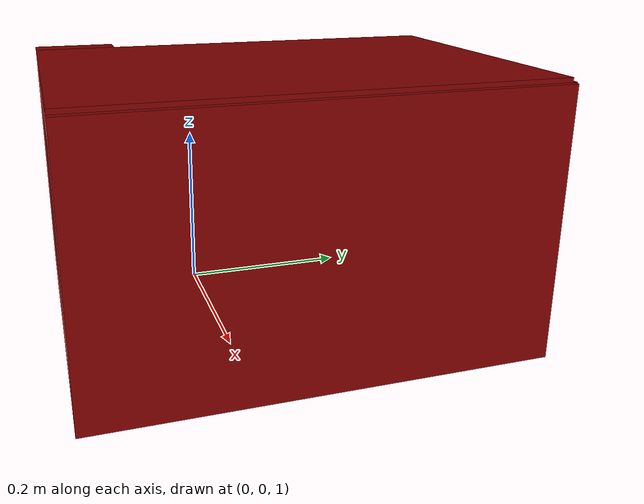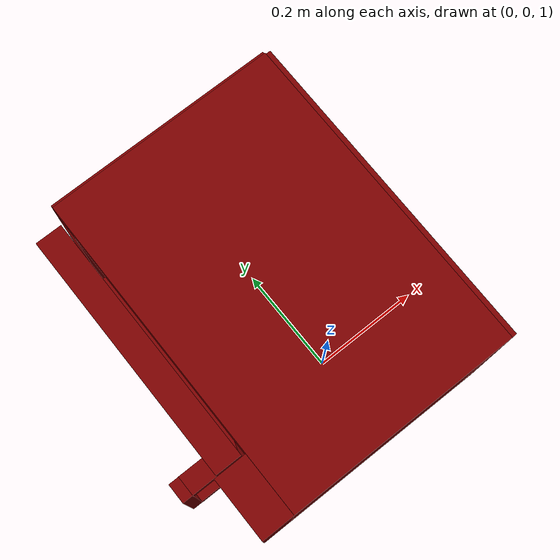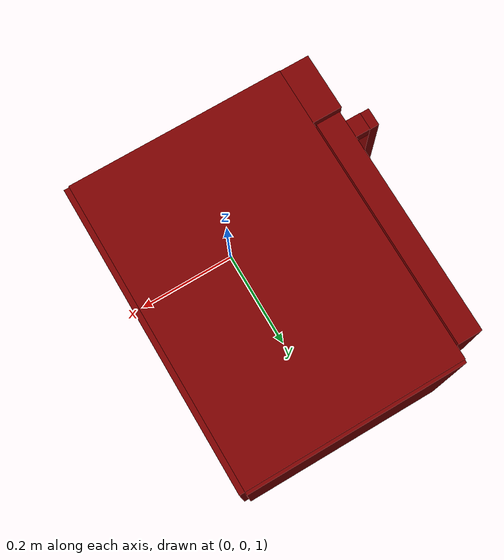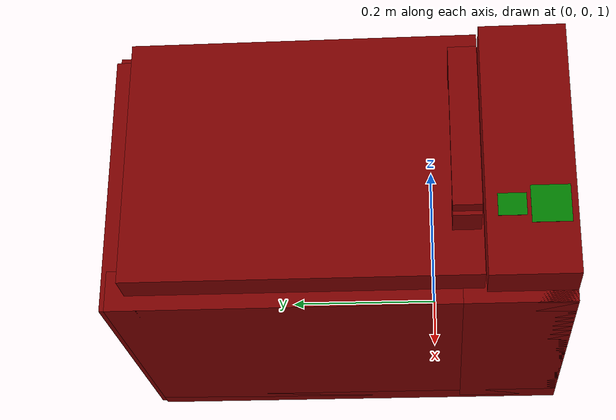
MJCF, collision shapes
<?xml version='1.0' encoding='utf-8'?>
<mujoco model="microwave2_scaled_0.6">
  <asset>
    <texture file="robocasa_microwave/visuals/material_0.png" name="tex-microwave2" type="2d"/>
    <texture type="2d" name="microwave_image" file="robocasa_microwave/visuals/image0.png"/>
    <material name="microwave2" reflectance="0.5" texrepeat="1 1" texture="tex-microwave2" texuniform="false"/>
    <material name="Oven" texture="microwave_image" specular="0.5" shininess="0.25"/>
    <!-- 将 visual mesh 缩放为 0.6 (原 0.5 -> 0.6) -->
    <mesh file="robocasa_microwave/visuals/microwave2_0.obj" name="microwave2_0_vis" scale="0.6 0.6 0.6"/>
    <mesh file="robocasa_microwave/visuals/microwave2_door_1.obj" name="microwave2_door_0_vis" scale="0.6 0.6 0.6"/>
  </asset>

  <default>
    <default class="microwave_visual">
      <geom conaffinity="0" contype="0" group="1" type="mesh"/>
    </default>
    <default class="microwave_collision">
      <geom group="3" rgba="0.5 0 0 0.5" contype="1" conaffinity="1"/>
    </default>
  </default>

  <worldbody>
    <body>
      <body name="microwave_object" pos="-0.05 0.12 1.1" quat="0.70710678 0 0 -0.70710678">
        <!-- visual mesh (mesh 自带 scale=0.6) -->
        <geom solimp="0.998 0.998 0.001"
              solref="0.001 1"
              density="100"
              friction="0.95 0.3 0.1"
              type="mesh"
              mesh="microwave2_0_vis"
              material="Oven"
              class="microwave_visual"/>

        <!-- Back Wall (pos & size 均放大 1.2x) -->
        <geom class="microwave_collision" type="box" pos="0 0.2475 0" size="0.3 0.0192 0.18"/>

        <!-- Floor -->
        <geom class="microwave_collision" type="box" pos="0 0.045 -0.153" size="0.3 0.2112 0.027"/>

        <!-- Top -->
        <geom class="microwave_collision" type="box" pos="0 0.045 0.165" size="0.3 0.2112 0.021"/>

        <!-- Left Wall-->
        <geom class="microwave_collision" type="box" pos="-0.282 0.045 0" size="0.024 0.2112 0.18"/>

        <!-- Right Wall-->
        <geom class="microwave_collision" type="box" pos="0.228 0.045 0" size="0.072 0.2112 0.18"/>

        <!-- Keypad -->
        <geom class="microwave_collision" type="box" pos="0.243 -0.195 0.009" size="0.057 0.0303 0.174"/>

        <!-- start/stop buttons -->
        <geom class="microwave_collision" type="box" pos="0.267 -0.195 -0.072" size="0.025 0.0306 0.025" name="start_button" rgba="0.0 0.5 0 0.5"/>
        <geom class="microwave_collision" type="box" pos="0.219 -0.195 -0.072" size="0.018 0.0306 0.015" name="stop_button" rgba="0.0 0.5 0 0.5"/>

        <!-- tray (cylinder: radius, half-height) -->
        <geom class="microwave_collision" type="cylinder" pos="-0.054 0.03 -0.126" size="0.15 0.003" rgba="0 1 1 1" name="tray"/>

        <body name="door">
          <!-- joint anchor 同样放大 -->
          <joint axis="0 0 1"
                 limited="true"
                 name="microjoint"
                 range="-1.6 0"
                 damping="2"
                 frictionloss="2"
                 armature=".01"
                 pos="-0.27 -0.2202 0"
                 ref="0"/>

          <!-- door visual (mesh，mesh scale 已设 0.6) -->
          <geom solimp="0.998 0.998 0.001"
                solref="0.001 1"
                density="100"
                friction="0.95 0.3 0.1"
                type="mesh"
                mesh="microwave2_door_0_vis"
                material="Oven"
                class="microwave_visual"/>

          <!-- Door collision -->
          <geom class="microwave_collision" type="box" pos="-0.045 -0.1962 0.006" size="0.228 0.024 0.168"/>

          <!-- Handle Top -->
          <geom class="microwave_collision" type="box" pos="0.162 -0.243 0.108" size="0.018 0.0228 0.0126"/>

          <!-- Handle Bottom -->
          <geom class="microwave_collision" type="box" pos="0.162 -0.243 -0.09" size="0.018 0.0228 0.0126"/>

          <!-- Handle Main -->
          <geom class="microwave_collision" type="box" pos="0.162 -0.275 0.0108" size="0.018 0.0096 0.108" name="door_handle"/>

          <!-- door sites (pos 缩放) -->
          <site rgba="1 0 0 0" size="0.006" pos="-0.045 -0.222 0.006" name="door_p1"/>
          <site rgba="0 1 0 0" size="0.006" pos="-0.015 -0.222 0.006" name="door_p2"/>
          <site rgba="0 0 1 0" size="0.006" pos="-0.045 -0.222 0.036" name="door_p3"/>
        </body>

        <!-- exterior bounding box points (缩放后) -->
        <site rgba="1 1 1 0" size="0.012" pos="-0.306 -0.222 -0.1698" name="ext_p0"/>
        <site rgba="1 0 0 0" size="0.012" pos="0.306 -0.222 -0.1698" name="ext_px"/>
        <site rgba="0 1 0 0" size="0.012" pos="-0.306 0.273 -0.1698" name="ext_py"/>
        <site rgba="0 0 1 0" size="0.012" pos="-0.306 -0.222 0.183" name="ext_pz"/>

        <!-- interior bounding box points (缩放后) -->
        <site rgba="0.5 0.5 0.5 0" size="0.012" pos="-0.258 -0.162 -0.12" name="int_p0"/>
        <site rgba="1 1 0 0" size="0.012" pos="0.156 -0.162 -0.12" name="int_px"/>
        <site rgba="0 1 1 0" size="0.012" pos="-0.258 0.222 -0.12" name="int_py"/>
        <site rgba="1 0 1 0" size="0.012" pos="-0.258 -0.162 0.144" name="int_pz"/>
      </body>
    </body>
  </worldbody>
</mujoco>
